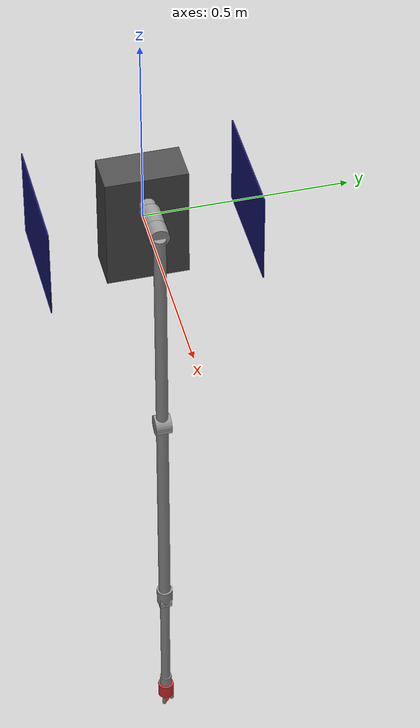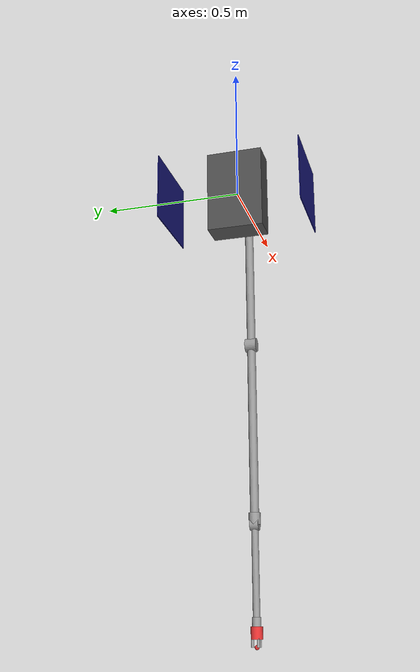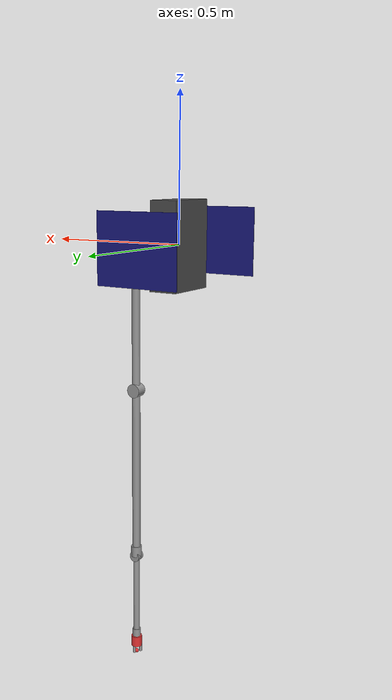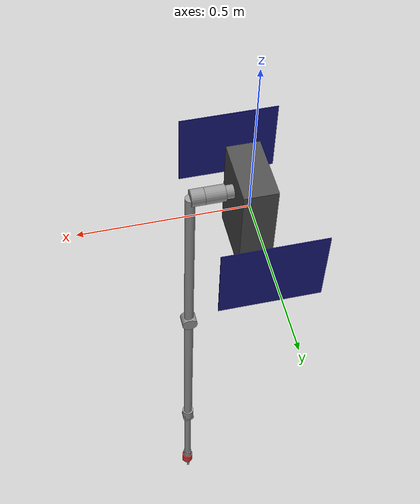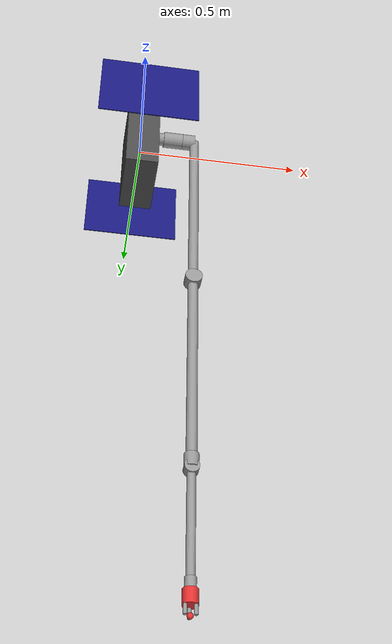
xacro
<?xml version="1.0"?>
<robot xmlns:xacro="http://www.ros.org/wiki/xacro" name="chaser_satellite">

  <!-- Package path for config files -->
  <xacro:property name="pkg_path" value="$(find hpop_gazebo)"/>

  <!-- 6U CubeSat Properties (10cm x 20cm x 30cm - 2x3U config) -->
  <xacro:property name="cubesat_unit" value="0.1"/>  <!-- 10cm = 1U -->
  <xacro:property name="satellite_x" value="${cubesat_unit}"/>       <!-- 10cm -->
  <xacro:property name="satellite_y" value="${2*cubesat_unit}"/>     <!-- 20cm (2U) -->
  <xacro:property name="satellite_z" value="${3*cubesat_unit}"/>     <!-- 30cm (3U) -->
  <xacro:property name="satellite_mass" value="12.0"/>  <!-- 12kg typical for 6U -->

  <!-- Robot arm: Canadarm-style (thin and long, ~2m reach) -->

  <!-- Materials -->
  <material name="cubesat_body">
    <color rgba="0.3 0.3 0.3 1.0"/>  <!-- Dark grey aluminum -->
  </material>
  <material name="solar_cell">
    <color rgba="0.1 0.1 0.5 1.0"/>  <!-- Dark blue solar cells -->
  </material>
  <material name="grey">
    <color rgba="0.6 0.6 0.6 1.0"/>
  </material>
  <material name="magnet_red">
    <color rgba="0.9 0.2 0.2 1.0"/>
  </material>

  <!-- Dummy root link for KDL (no inertia) -->
  <link name="dummy_root"/>

  <joint name="dummy_to_base" type="fixed">
    <parent link="dummy_root"/>
    <child link="base_link"/>
    <origin xyz="0 0 0" rpy="0 0 0"/>
  </joint>

  <!-- Base link (Large satellite body like ISS module) -->
  <link name="base_link">
    <visual>
      <origin xyz="0 0 0" rpy="0 0 0"/>
      <geometry>
        <box size="${satellite_x} ${satellite_y} ${satellite_z}"/>
      </geometry>
      <material name="cubesat_body"/>
    </visual>
    <collision>
      <origin xyz="0 0 0" rpy="0 0 0"/>
      <geometry>
        <box size="${satellite_x} ${satellite_y} ${satellite_z}"/>
      </geometry>
    </collision>
    <inertial>
      <origin xyz="0 0 0" rpy="0 0 0"/>
      <mass value="${satellite_mass}"/>
      <inertia ixx="${satellite_mass*(satellite_y*satellite_y+satellite_z*satellite_z)/12}"
               ixy="0" ixz="0"
               iyy="${satellite_mass*(satellite_x*satellite_x+satellite_z*satellite_z)/12}"
               iyz="0"
               izz="${satellite_mass*(satellite_x*satellite_x+satellite_y*satellite_y)/12}"/>
    </inertial>
  </link>

  <!-- Deployable Solar Panel 1 (+Y side) - 6U size -->
  <link name="solar_panel_1">
    <visual>
      <origin xyz="0 0 0" rpy="0 0 0"/>
      <geometry>
        <box size="${satellite_z} 0.003 ${satellite_z*0.8}"/>
      </geometry>
      <material name="solar_cell"/>
    </visual>
    <collision>
      <origin xyz="0 0 0" rpy="0 0 0"/>
      <geometry>
        <box size="${satellite_z} 0.003 ${satellite_z*0.8}"/>
      </geometry>
    </collision>
    <inertial>
      <mass value="0.3"/>
      <inertia ixx="0.001" ixy="0" ixz="0" iyy="0.004" iyz="0" izz="0.004"/>
    </inertial>
  </link>

  <joint name="solar_panel_1_joint" type="fixed">
    <parent link="base_link"/>
    <child link="solar_panel_1"/>
    <origin xyz="0 ${satellite_y/2 + satellite_z/2 + 0.005} 0" rpy="0 0 0"/>
  </joint>

  <!-- Deployable Solar Panel 2 (-Y side) - 6U size -->
  <link name="solar_panel_2">
    <visual>
      <origin xyz="0 0 0" rpy="0 0 0"/>
      <geometry>
        <box size="${satellite_z} 0.003 ${satellite_z*0.8}"/>
      </geometry>
      <material name="solar_cell"/>
    </visual>
    <collision>
      <origin xyz="0 0 0" rpy="0 0 0"/>
      <geometry>
        <box size="${satellite_z} 0.003 ${satellite_z*0.8}"/>
      </geometry>
    </collision>
    <inertial>
      <mass value="0.3"/>
      <inertia ixx="0.001" ixy="0" ixz="0" iyy="0.004" iyz="0" izz="0.004"/>
    </inertial>
  </link>

  <joint name="solar_panel_2_joint" type="fixed">
    <parent link="base_link"/>
    <child link="solar_panel_2"/>
    <origin xyz="0 ${-satellite_y/2 - satellite_z/2 - 0.005} 0" rpy="0 0 0"/>
  </joint>

  <!-- Arm mounting point on +X face -->
  <link name="arm_base">
    <visual>
      <origin xyz="0 0 0.012" rpy="0 0 0"/>
      <geometry>
        <cylinder radius="0.02" length="0.024"/>
      </geometry>
      <material name="grey"/>
    </visual>
    <collision>
      <origin xyz="0 0 0.012" rpy="0 0 0"/>
      <geometry>
        <cylinder radius="0.02" length="0.024"/>
      </geometry>
    </collision>
    <inertial>
      <mass value="0.1"/>
      <inertia ixx="0.00002" ixy="0" ixz="0" iyy="0.00002" iyz="0" izz="0.00002"/>
    </inertial>
  </link>

  <joint name="arm_base_joint" type="fixed">
    <parent link="base_link"/>
    <child link="arm_base"/>
    <origin xyz="${satellite_x/2} 0 ${satellite_z/4}" rpy="0 ${pi/2} 0"/>
  </joint>

  <!-- Canadarm-style Robot Arm (7 DOF) - Thin and Long -->
  <!-- Total reach: ~2m (comparable to satellite scale) -->

  <!-- Arm dimensions (Canadarm-like proportions) -->
  <xacro:property name="arm_tube_radius" value="0.015"/>  <!-- 15mm thin tube -->
  <xacro:property name="joint_radius" value="0.025"/>     <!-- Joint housing -->
  <xacro:property name="boom_length_1" value="0.6"/>      <!-- Upper boom: 60cm -->
  <xacro:property name="boom_length_2" value="0.6"/>      <!-- Lower boom: 60cm -->
  <xacro:property name="wrist_length" value="0.3"/>       <!-- Wrist section: 30cm -->

  <!-- Link 1 (Base rotation housing) -->
  <link name="link1">
    <visual>
      <origin xyz="0 0 0.03" rpy="0 0 0"/>
      <geometry>
        <cylinder radius="${joint_radius}" length="0.06"/>
      </geometry>
      <material name="grey"/>
    </visual>
    <collision>
      <origin xyz="0 0 0.03" rpy="0 0 0"/>
      <geometry>
        <cylinder radius="${joint_radius}" length="0.06"/>
      </geometry>
    </collision>
    <inertial>
      <origin xyz="0 0 0.03" rpy="0 0 0"/>
      <mass value="0.3"/>
      <inertia ixx="0.0001" ixy="0.0" ixz="0.0" iyy="0.0001" iyz="0.0" izz="0.00005"/>
    </inertial>
  </link>

  <joint name="arm_mount_joint" type="fixed">
    <parent link="arm_base"/>
    <child link="link1"/>
    <origin xyz="0 0 0.024" rpy="0 0 0"/>
  </joint>

  <!-- Joint 1 (base yaw - rotation around Z) -->
  <joint name="joint1" type="revolute">
    <parent link="link1"/>
    <child link="link2"/>
    <origin xyz="0.0 0.0 0.06" rpy="0 0 0"/>
    <axis xyz="0 0 1"/>
    <limit velocity="1.0" effort="50" lower="${-pi}" upper="${pi}"/>
    <dynamics damping="1.0"/>
  </joint>

  <!-- Link 2 (Shoulder pitch joint housing) -->
  <link name="link2">
    <visual>
      <origin xyz="0 0 0.02" rpy="0 0 0"/>
      <geometry>
        <cylinder radius="${joint_radius}" length="0.04"/>
      </geometry>
      <material name="grey"/>
    </visual>
    <collision>
      <origin xyz="0 0 0.02" rpy="0 0 0"/>
      <geometry>
        <cylinder radius="${joint_radius}" length="0.04"/>
      </geometry>
    </collision>
    <inertial>
      <origin xyz="0 0 0.02" rpy="0 0 0"/>
      <mass value="0.2"/>
      <inertia ixx="0.00005" ixy="0.0" ixz="0.0" iyy="0.00005" iyz="0.0" izz="0.00003"/>
    </inertial>
  </link>

  <!-- Joint 2 (shoulder pitch) -->
  <joint name="joint2" type="revolute">
    <parent link="link2"/>
    <child link="link3"/>
    <origin xyz="0.0 0.0 0.04" rpy="0 0 0"/>
    <axis xyz="0 1 0"/>
    <limit velocity="1.0" effort="50" lower="${-pi*0.75}" upper="${pi*0.75}"/>
    <dynamics damping="1.0"/>
  </joint>

  <!-- Link 3 (Upper boom - long thin tube) -->
  <link name="link3">
    <visual>
      <origin xyz="${boom_length_1/2} 0 0" rpy="0 ${pi/2} 0"/>
      <geometry>
        <cylinder radius="${arm_tube_radius}" length="${boom_length_1}"/>
      </geometry>
      <material name="grey"/>
    </visual>
    <collision>
      <origin xyz="${boom_length_1/2} 0 0" rpy="0 ${pi/2} 0"/>
      <geometry>
        <cylinder radius="${arm_tube_radius}" length="${boom_length_1}"/>
      </geometry>
    </collision>
    <inertial>
      <origin xyz="${boom_length_1/2} 0 0" rpy="0 0 0"/>
      <mass value="0.5"/>
      <inertia ixx="0.0001" ixy="0.0" ixz="0.0" iyy="0.015" iyz="0.0" izz="0.015"/>
    </inertial>
  </link>

  <!-- Joint 3 (elbow pitch) -->
  <joint name="joint3" type="revolute">
    <parent link="link3"/>
    <child link="link4"/>
    <origin xyz="${boom_length_1} 0 0" rpy="0 0 0"/>
    <axis xyz="0 1 0"/>
    <limit velocity="1.0" effort="50" lower="${-pi*0.75}" upper="${pi*0.75}"/>
    <dynamics damping="1.0"/>
  </joint>

  <!-- Link 4 (Elbow joint housing + Lower boom) -->
  <link name="link4">
    <!-- Elbow joint housing -->
    <visual>
      <origin xyz="0 0 0" rpy="${pi/2} 0 0"/>
      <geometry>
        <cylinder radius="${joint_radius}" length="0.04"/>
      </geometry>
      <material name="grey"/>
    </visual>
    <!-- Lower boom (thin tube) -->
    <visual>
      <origin xyz="${boom_length_2/2} 0 0" rpy="0 ${pi/2} 0"/>
      <geometry>
        <cylinder radius="${arm_tube_radius}" length="${boom_length_2}"/>
      </geometry>
      <material name="grey"/>
    </visual>
    <collision>
      <origin xyz="${boom_length_2/2} 0 0" rpy="0 ${pi/2} 0"/>
      <geometry>
        <cylinder radius="${arm_tube_radius}" length="${boom_length_2}"/>
      </geometry>
    </collision>
    <inertial>
      <origin xyz="${boom_length_2/2} 0 0" rpy="0 0 0"/>
      <mass value="0.5"/>
      <inertia ixx="0.0001" ixy="0.0" ixz="0.0" iyy="0.015" iyz="0.0" izz="0.015"/>
    </inertial>
  </link>

  <!-- Joint 4 (wrist roll) -->
  <joint name="joint4" type="revolute">
    <parent link="link4"/>
    <child link="link5"/>
    <origin xyz="${boom_length_2} 0 0" rpy="0 0 0"/>
    <axis xyz="1 0 0"/>
    <limit velocity="1.5" effort="30" lower="${-pi}" upper="${pi}"/>
    <dynamics damping="0.5"/>
  </joint>

  <!-- Link 5 (Wrist roll housing) -->
  <link name="link5">
    <visual>
      <origin xyz="0.02 0 0" rpy="0 ${pi/2} 0"/>
      <geometry>
        <cylinder radius="${joint_radius*0.8}" length="0.04"/>
      </geometry>
      <material name="grey"/>
    </visual>
    <collision>
      <origin xyz="0.02 0 0" rpy="0 ${pi/2} 0"/>
      <geometry>
        <cylinder radius="${joint_radius*0.8}" length="0.04"/>
      </geometry>
    </collision>
    <inertial>
      <origin xyz="0.02 0 0" rpy="0 0 0"/>
      <mass value="0.15"/>
      <inertia ixx="0.00002" ixy="0.0" ixz="0.0" iyy="0.00002" iyz="0.0" izz="0.00002"/>
    </inertial>
  </link>

  <!-- Joint 5 (wrist pitch) -->
  <joint name="joint5" type="revolute">
    <parent link="link5"/>
    <child link="link6"/>
    <origin xyz="0.04 0 0" rpy="0 0 0"/>
    <axis xyz="0 1 0"/>
    <limit velocity="1.5" effort="30" lower="${-pi*0.75}" upper="${pi*0.75}"/>
    <dynamics damping="0.5"/>
  </joint>

  <!-- Link 6 (Wrist pitch housing + extension) -->
  <link name="link6">
    <visual>
      <origin xyz="0 0 0" rpy="${pi/2} 0 0"/>
      <geometry>
        <cylinder radius="${joint_radius*0.8}" length="0.03"/>
      </geometry>
      <material name="grey"/>
    </visual>
    <!-- Wrist extension tube -->
    <visual>
      <origin xyz="${wrist_length/2} 0 0" rpy="0 ${pi/2} 0"/>
      <geometry>
        <cylinder radius="${arm_tube_radius*0.8}" length="${wrist_length}"/>
      </geometry>
      <material name="grey"/>
    </visual>
    <collision>
      <origin xyz="${wrist_length/2} 0 0" rpy="0 ${pi/2} 0"/>
      <geometry>
        <cylinder radius="${arm_tube_radius*0.8}" length="${wrist_length}"/>
      </geometry>
    </collision>
    <inertial>
      <origin xyz="${wrist_length/2} 0 0" rpy="0 0 0"/>
      <mass value="0.2"/>
      <inertia ixx="0.00002" ixy="0.0" ixz="0.0" iyy="0.001" iyz="0.0" izz="0.001"/>
    </inertial>
  </link>

  <!-- Joint 6 (end effector yaw) -->
  <joint name="joint6" type="revolute">
    <parent link="link6"/>
    <child link="end_link"/>
    <origin xyz="${wrist_length} 0 0" rpy="0 0 0"/>
    <axis xyz="1 0 0"/>
    <limit velocity="2.0" effort="20" lower="${-pi}" upper="${pi}"/>
    <dynamics damping="0.3"/>
  </joint>

  <!-- End link (End effector mount) -->
  <link name="end_link">
    <visual>
      <origin xyz="0.015 0 0" rpy="0 ${pi/2} 0"/>
      <geometry>
        <cylinder radius="${joint_radius*0.6}" length="0.03"/>
      </geometry>
      <material name="grey"/>
    </visual>
    <collision>
      <origin xyz="0.015 0 0" rpy="0 ${pi/2} 0"/>
      <geometry>
        <cylinder radius="${joint_radius*0.6}" length="0.03"/>
      </geometry>
    </collision>
    <inertial>
      <origin xyz="0.015 0 0" rpy="0 0 0"/>
      <mass value="0.05"/>
      <inertia ixx="0.000001" ixy="0.0" ixz="0.0" iyy="0.000001" iyz="0.0" izz="0.000001"/>
    </inertial>
  </link>

  <!-- Magnetic End Effector (Canadarm-style gripper) -->

  <joint name="magnet_joint" type="fixed">
    <parent link="end_link"/>
    <child link="magnetic_end_effector"/>
    <origin xyz="0.03 0 0" rpy="0 0 0"/>
  </joint>

  <link name="magnetic_end_effector">
    <!-- Gripper housing -->
    <visual>
      <origin xyz="0.02 0 0" rpy="0 ${pi/2} 0"/>
      <geometry>
        <cylinder radius="0.02" length="0.04"/>
      </geometry>
      <material name="magnet_red"/>
    </visual>
    <!-- Gripper fingers (3 prongs like Canadarm) -->
    <visual>
      <origin xyz="0.05 0.015 0" rpy="0 ${pi/2} 0"/>
      <geometry>
        <cylinder radius="0.005" length="0.03"/>
      </geometry>
      <material name="grey"/>
    </visual>
    <visual>
      <origin xyz="0.05 -0.0075 0.013" rpy="0 ${pi/2} 0"/>
      <geometry>
        <cylinder radius="0.005" length="0.03"/>
      </geometry>
      <material name="grey"/>
    </visual>
    <visual>
      <origin xyz="0.05 -0.0075 -0.013" rpy="0 ${pi/2} 0"/>
      <geometry>
        <cylinder radius="0.005" length="0.03"/>
      </geometry>
      <material name="grey"/>
    </visual>
    <collision>
      <origin xyz="0.03 0 0" rpy="0 ${pi/2} 0"/>
      <geometry>
        <cylinder radius="0.025" length="0.06"/>
      </geometry>
    </collision>
    <inertial>
      <mass value="0.1"/>
      <inertia ixx="0.00001" ixy="0" ixz="0" iyy="0.00001" iyz="0" izz="0.00001"/>
    </inertial>
  </link>

  <!-- Magnet contact point -->
  <link name="magnet_contact_point">
    <visual>
      <origin xyz="0 0 0" rpy="0 0 0"/>
      <geometry>
        <sphere radius="0.008"/>
      </geometry>
      <material name="magnet_red"/>
    </visual>
    <inertial>
      <mass value="0.01"/>
      <inertia ixx="0.0000001" ixy="0" ixz="0" iyy="0.0000001" iyz="0" izz="0.0000001"/>
    </inertial>
  </link>

  <joint name="magnet_contact_joint" type="fixed">
    <parent link="magnetic_end_effector"/>
    <child link="magnet_contact_point"/>
    <origin xyz="0.065 0 0" rpy="0 0 0"/>
  </joint>

  <!-- Gazebo Plugins and Controllers (ROS2) -->

  <!-- ros2_control hardware interface for MoveIt2 -->
  <ros2_control name="chaser_arm_control" type="system">
    <hardware>
      <plugin>gazebo_ros2_control/GazeboSystem</plugin>
    </hardware>
    <joint name="joint1">
      <command_interface name="position"/>
      <state_interface name="position"/>
      <state_interface name="velocity"/>
    </joint>
    <joint name="joint2">
      <command_interface name="position"/>
      <state_interface name="position"/>
      <state_interface name="velocity"/>
    </joint>
    <joint name="joint3">
      <command_interface name="position"/>
      <state_interface name="position"/>
      <state_interface name="velocity"/>
    </joint>
    <joint name="joint4">
      <command_interface name="position"/>
      <state_interface name="position"/>
      <state_interface name="velocity"/>
    </joint>
    <joint name="joint5">
      <command_interface name="position"/>
      <state_interface name="position"/>
      <state_interface name="velocity"/>
    </joint>
    <joint name="joint6">
      <command_interface name="position"/>
      <state_interface name="position"/>
      <state_interface name="velocity"/>
    </joint>
  </ros2_control>

  <!-- Gazebo materials -->
  <gazebo reference="base_link">
    <material>Gazebo/DarkGrey</material>
  </gazebo>
  <gazebo reference="solar_panel_1">
    <material>Gazebo/Blue</material>
  </gazebo>
  <gazebo reference="solar_panel_2">
    <material>Gazebo/Blue</material>
  </gazebo>
  <gazebo reference="magnetic_end_effector">
    <material>Gazebo/Red</material>
  </gazebo>
  <gazebo reference="link1"><material>Gazebo/Grey</material></gazebo>
  <gazebo reference="link2"><material>Gazebo/Grey</material></gazebo>
  <gazebo reference="link3"><material>Gazebo/Grey</material></gazebo>
  <gazebo reference="link4"><material>Gazebo/Grey</material></gazebo>
  <gazebo reference="link5"><material>Gazebo/Grey</material></gazebo>
  <gazebo reference="link6"><material>Gazebo/Grey</material></gazebo>
  <gazebo reference="end_link"><material>Gazebo/Grey</material></gazebo>

</robot>
